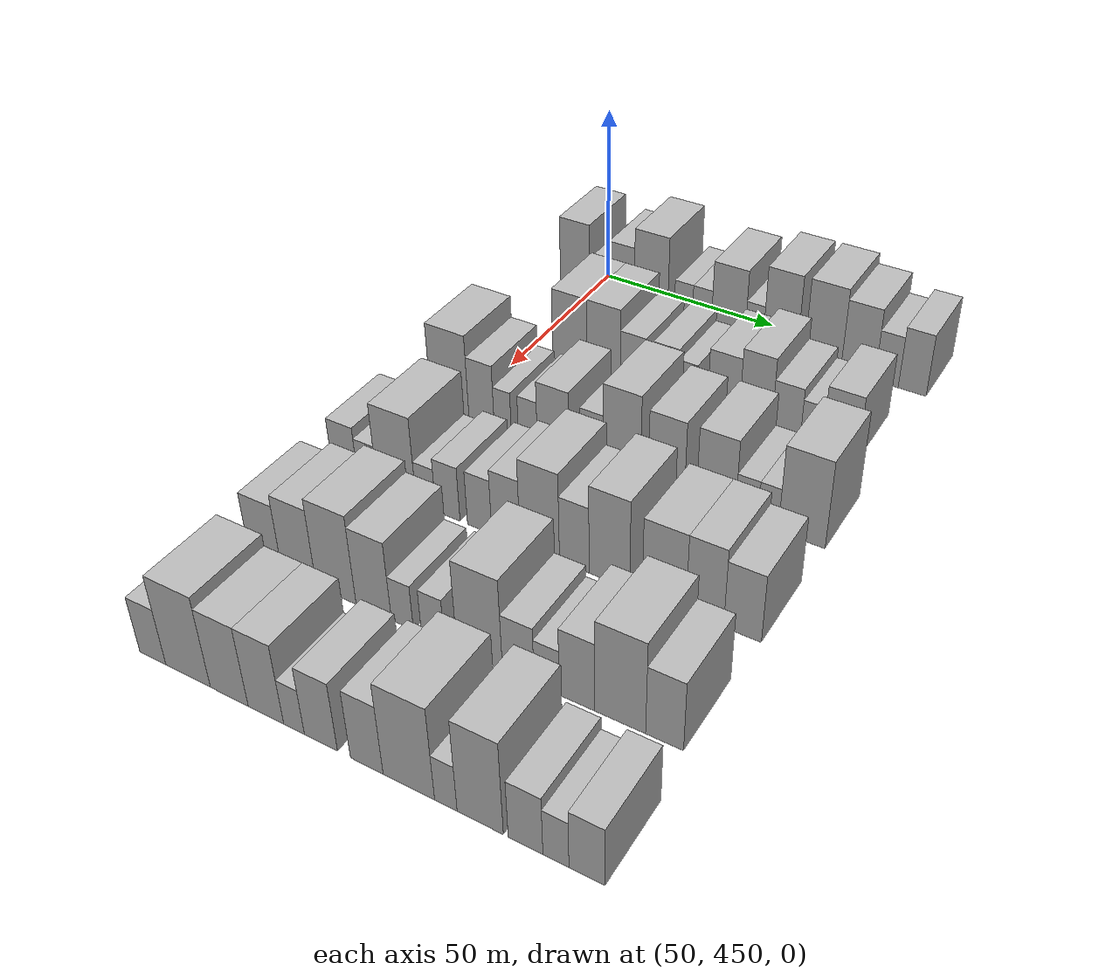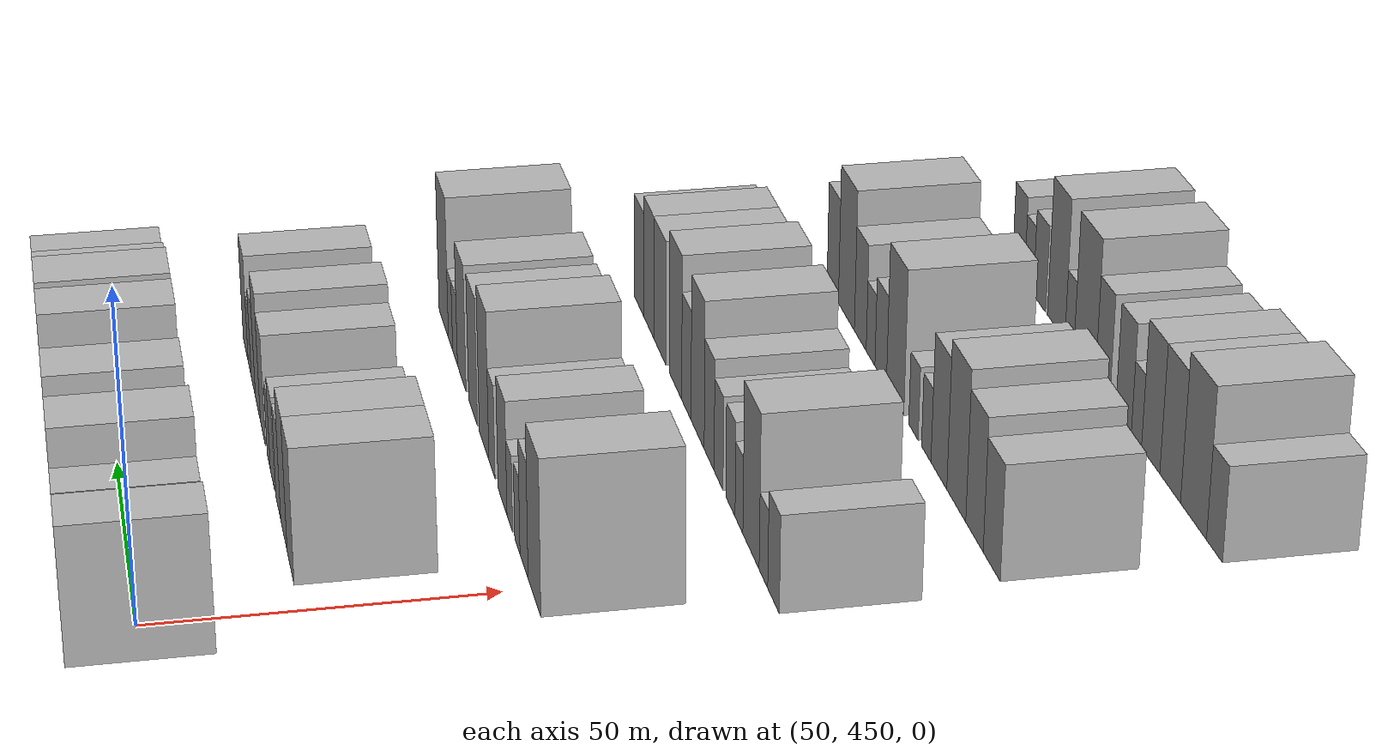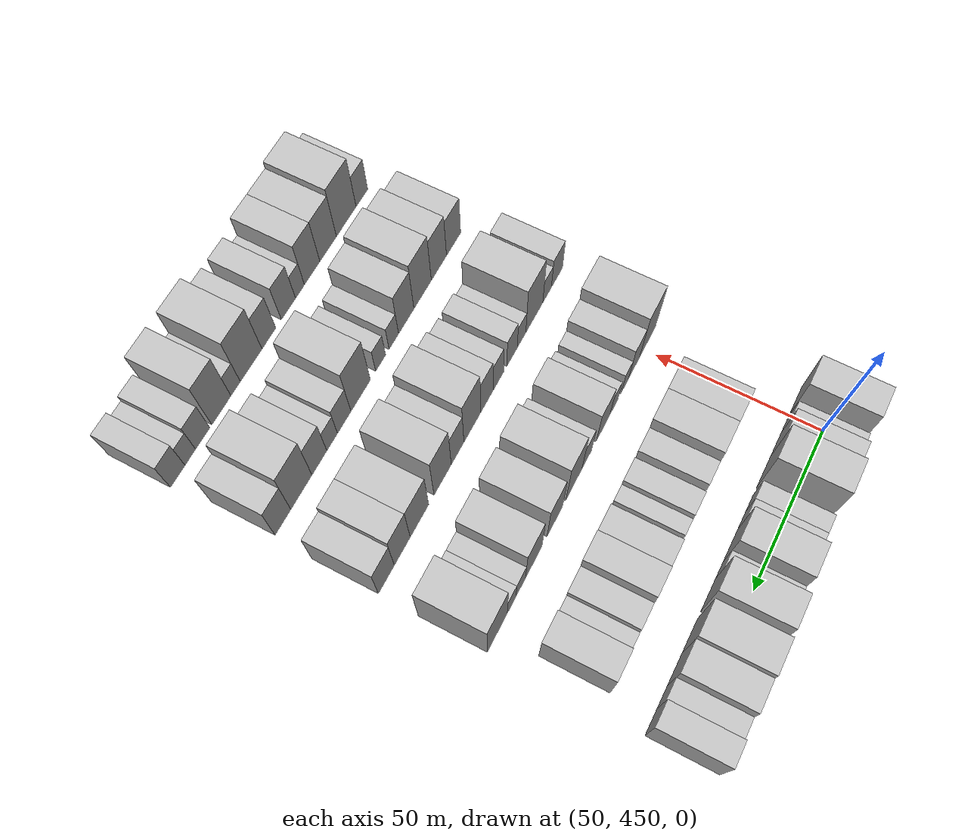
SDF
<sdf version="1.6">
 <world name="default">
  <model name="building_108">
   <static>1</static>
   <pose>50.0000 445.0283 0 0.000000 0.000000 0.000000</pose>
   <link name="link">
    <pose>0 0 10.50 0 0 0</pose>
    <collision name="collision"><geometry><box><size>20.0000 9.3540 21.0000</size></box></geometry></collision>
    <visual name="visual">
     <cast_shadows>0</cast_shadows>
     <geometry><box><size>20.0000 9.3540 21.0000</size></box></geometry>
     <material>
      <script>
       <uri>model://HANNAS_wall/materials/scripts</uri>
       <uri>model://HANNAS_wall/materials/textures</uri>
       <name>vrc/HANNAS_wall</name>
      </script>
     </material>
    </visual>
   </link>
  </model>
  <model name="building_109">
   <static>1</static>
   <pose>50.0000 453.3056 0 0.000000 0.000000 0.000000</pose>
   <link name="link">
    <pose>0 0 6.00 0 0 0</pose>
    <collision name="collision"><geometry><box><size>20.0000 5.2006 12.0000</size></box></geometry></collision>
    <visual name="visual">
     <cast_shadows>0</cast_shadows>
     <geometry><box><size>20.0000 5.2006 12.0000</size></box></geometry>
     <material>
      <script>
       <uri>model://HANNAS_wall/materials/scripts</uri>
       <uri>model://HANNAS_wall/materials/textures</uri>
       <name>vrc/HANNAS_wall</name>
      </script>
     </material>
    </visual>
   </link>
  </model>
  <model name="building_110">
   <static>1</static>
   <pose>50.0000 459.7465 0 0.000000 0.000000 0.000000</pose>
   <link name="link">
    <pose>0 0 9.00 0 0 0</pose>
    <collision name="collision"><geometry><box><size>20.0000 7.6811 18.0000</size></box></geometry></collision>
    <visual name="visual">
     <cast_shadows>0</cast_shadows>
     <geometry><box><size>20.0000 7.6811 18.0000</size></box></geometry>
     <material>
      <script>
       <uri>model://HANNAS_wall/materials/scripts</uri>
       <uri>model://HANNAS_wall/materials/textures</uri>
       <name>vrc/HANNAS_wall</name>
      </script>
     </material>
    </visual>
   </link>
  </model>
  <model name="building_111">
   <static>1</static>
   <pose>50.0000 468.6966 0 0.000000 0.000000 0.000000</pose>
   <link name="link">
    <pose>0 0 12.00 0 0 0</pose>
    <collision name="collision"><geometry><box><size>20.0000 10.2190 24.0000</size></box></geometry></collision>
    <visual name="visual">
     <cast_shadows>0</cast_shadows>
     <geometry><box><size>20.0000 10.2190 24.0000</size></box></geometry>
     <material>
      <script>
       <uri>model://HANNAS_wall/materials/scripts</uri>
       <uri>model://HANNAS_wall/materials/textures</uri>
       <name>vrc/HANNAS_wall</name>
      </script>
     </material>
    </visual>
   </link>
  </model>
  <model name="building_112">
   <static>1</static>
   <pose>50.0000 478.5039 0 0.000000 0.000000 0.000000</pose>
   <link name="link">
    <pose>0 0 6.00 0 0 0</pose>
    <collision name="collision"><geometry><box><size>20.0000 5.3956 12.0000</size></box></geometry></collision>
    <visual name="visual">
     <cast_shadows>0</cast_shadows>
     <geometry><box><size>20.0000 5.3956 12.0000</size></box></geometry>
     <material>
      <script>
       <uri>model://HANNAS_wall/materials/scripts</uri>
       <uri>model://HANNAS_wall/materials/textures</uri>
       <name>vrc/HANNAS_wall</name>
      </script>
     </material>
    </visual>
   </link>
  </model>
  <model name="building_113">
   <static>1</static>
   <pose>50.0000 484.0043 0 0.000000 0.000000 0.000000</pose>
   <link name="link">
    <pose>0 0 6.00 0 0 0</pose>
    <collision name="collision"><geometry><box><size>20.0000 5.6053 12.0000</size></box></geometry></collision>
    <visual name="visual">
     <cast_shadows>0</cast_shadows>
     <geometry><box><size>20.0000 5.6053 12.0000</size></box></geometry>
     <material>
      <script>
       <uri>model://HANNAS_wall/materials/scripts</uri>
       <uri>model://HANNAS_wall/materials/textures</uri>
       <name>vrc/HANNAS_wall</name>
      </script>
     </material>
    </visual>
   </link>
  </model>
  <model name="building_114">
   <static>1</static>
   <pose>50.0000 491.7116 0 0.000000 0.000000 0.000000</pose>
   <link name="link">
    <pose>0 0 10.50 0 0 0</pose>
    <collision name="collision"><geometry><box><size>20.0000 9.8092 21.0000</size></box></geometry></collision>
    <visual name="visual">
     <cast_shadows>0</cast_shadows>
     <geometry><box><size>20.0000 9.8092 21.0000</size></box></geometry>
     <material>
      <script>
       <uri>model://HANNAS_wall/materials/scripts</uri>
       <uri>model://HANNAS_wall/materials/textures</uri>
       <name>vrc/HANNAS_wall</name>
      </script>
     </material>
    </visual>
   </link>
  </model>
  <model name="building_115">
   <static>1</static>
   <pose>50.0000 499.1779 0 0.000000 0.000000 0.000000</pose>
   <link name="link">
    <pose>0 0 6.00 0 0 0</pose>
    <collision name="collision"><geometry><box><size>20.0000 5.1235 12.0000</size></box></geometry></collision>
    <visual name="visual">
     <cast_shadows>0</cast_shadows>
     <geometry><box><size>20.0000 5.1235 12.0000</size></box></geometry>
     <material>
      <script>
       <uri>model://HANNAS_wall/materials/scripts</uri>
       <uri>model://HANNAS_wall/materials/textures</uri>
       <name>vrc/HANNAS_wall</name>
      </script>
     </material>
    </visual>
   </link>
  </model>
  <model name="building_116">
   <static>1</static>
   <pose>50.0000 506.5544 0 0.000000 0.000000 0.000000</pose>
   <link name="link">
    <pose>0 0 12.00 0 0 0</pose>
    <collision name="collision"><geometry><box><size>20.0000 9.6294 24.0000</size></box></geometry></collision>
    <visual name="visual">
     <cast_shadows>0</cast_shadows>
     <geometry><box><size>20.0000 9.6294 24.0000</size></box></geometry>
     <material>
      <script>
       <uri>model://HANNAS_wall/materials/scripts</uri>
       <uri>model://HANNAS_wall/materials/textures</uri>
       <name>vrc/HANNAS_wall</name>
      </script>
     </material>
    </visual>
   </link>
  </model>
  <model name="building_117">
   <static>1</static>
   <pose>50.0000 518.4179 0 0.000000 0.000000 0.000000</pose>
   <link name="link">
    <pose>0 0 12.00 0 0 0</pose>
    <collision name="collision"><geometry><box><size>20.0000 10.0976 24.0000</size></box></geometry></collision>
    <visual name="visual">
     <cast_shadows>0</cast_shadows>
     <geometry><box><size>20.0000 10.0976 24.0000</size></box></geometry>
     <material>
      <script>
       <uri>model://HANNAS_wall/materials/scripts</uri>
       <uri>model://HANNAS_wall/materials/textures</uri>
       <name>vrc/HANNAS_wall</name>
      </script>
     </material>
    </visual>
   </link>
  </model>
  <model name="building_118">
   <static>1</static>
   <pose>50.0000 528.0215 0 0.000000 0.000000 0.000000</pose>
   <link name="link">
    <pose>0 0 10.50 0 0 0</pose>
    <collision name="collision"><geometry><box><size>20.0000 9.1098 21.0000</size></box></geometry></collision>
    <visual name="visual">
     <cast_shadows>0</cast_shadows>
     <geometry><box><size>20.0000 9.1098 21.0000</size></box></geometry>
     <material>
      <script>
       <uri>model://HANNAS_wall/materials/scripts</uri>
       <uri>model://HANNAS_wall/materials/textures</uri>
       <name>vrc/HANNAS_wall</name>
      </script>
     </material>
    </visual>
   </link>
  </model>
  <model name="building_119">
   <static>1</static>
   <pose>50.0000 535.6797 0 0.000000 0.000000 0.000000</pose>
   <link name="link">
    <pose>0 0 7.50 0 0 0</pose>
    <collision name="collision"><geometry><box><size>20.0000 6.2066 15.0000</size></box></geometry></collision>
    <visual name="visual">
     <cast_shadows>0</cast_shadows>
     <geometry><box><size>20.0000 6.2066 15.0000</size></box></geometry>
     <material>
      <script>
       <uri>model://HANNAS_wall/materials/scripts</uri>
       <uri>model://HANNAS_wall/materials/textures</uri>
       <name>vrc/HANNAS_wall</name>
      </script>
     </material>
    </visual>
   </link>
  </model>
  <model name="building_120">
   <static>1</static>
   <pose>50.0000 542.4233 0 0.000000 0.000000 0.000000</pose>
   <link name="link">
    <pose>0 0 9.00 0 0 0</pose>
    <collision name="collision"><geometry><box><size>20.0000 7.2804 18.0000</size></box></geometry></collision>
    <visual name="visual">
     <cast_shadows>0</cast_shadows>
     <geometry><box><size>20.0000 7.2804 18.0000</size></box></geometry>
     <material>
      <script>
       <uri>model://HANNAS_wall/materials/scripts</uri>
       <uri>model://HANNAS_wall/materials/textures</uri>
       <name>vrc/HANNAS_wall</name>
      </script>
     </material>
    </visual>
   </link>
  </model>
  <model name="building_235">
   <static>1</static>
   <pose>82.0000 462.4996 0 0.000000 0.000000 0.000000</pose>
   <link name="link">
    <pose>0 0 10.50 0 0 0</pose>
    <collision name="collision"><geometry><box><size>20.0000 10.1060 21.0000</size></box></geometry></collision>
    <visual name="visual">
     <cast_shadows>0</cast_shadows>
     <geometry><box><size>20.0000 10.1060 21.0000</size></box></geometry>
     <material>
      <script>
       <uri>model://HANNAS_wall/materials/scripts</uri>
       <uri>model://HANNAS_wall/materials/textures</uri>
       <name>vrc/HANNAS_wall</name>
      </script>
     </material>
    </visual>
   </link>
  </model>
  <model name="building_236">
   <static>1</static>
   <pose>82.0000 472.3910 0 0.000000 0.000000 0.000000</pose>
   <link name="link">
    <pose>0 0 10.50 0 0 0</pose>
    <collision name="collision"><geometry><box><size>20.0000 9.6768 21.0000</size></box></geometry></collision>
    <visual name="visual">
     <cast_shadows>0</cast_shadows>
     <geometry><box><size>20.0000 9.6768 21.0000</size></box></geometry>
     <material>
      <script>
       <uri>model://HANNAS_wall/materials/scripts</uri>
       <uri>model://HANNAS_wall/materials/textures</uri>
       <name>vrc/HANNAS_wall</name>
      </script>
     </material>
    </visual>
   </link>
  </model>
  <model name="building_237">
   <static>1</static>
   <pose>82.0000 480.8398 0 0.000000 0.000000 0.000000</pose>
   <link name="link">
    <pose>0 0 7.50 0 0 0</pose>
    <collision name="collision"><geometry><box><size>20.0000 7.2209 15.0000</size></box></geometry></collision>
    <visual name="visual">
     <cast_shadows>0</cast_shadows>
     <geometry><box><size>20.0000 7.2209 15.0000</size></box></geometry>
     <material>
      <script>
       <uri>model://HANNAS_wall/materials/scripts</uri>
       <uri>model://HANNAS_wall/materials/textures</uri>
       <name>vrc/HANNAS_wall</name>
      </script>
     </material>
    </visual>
   </link>
  </model>
  <model name="building_238">
   <static>1</static>
   <pose>82.0000 490.0213 0 0.000000 0.000000 0.000000</pose>
   <link name="link">
    <pose>0 0 7.50 0 0 0</pose>
    <collision name="collision"><geometry><box><size>20.0000 7.1421 15.0000</size></box></geometry></collision>
    <visual name="visual">
     <cast_shadows>0</cast_shadows>
     <geometry><box><size>20.0000 7.1421 15.0000</size></box></geometry>
     <material>
      <script>
       <uri>model://HANNAS_wall/materials/scripts</uri>
       <uri>model://HANNAS_wall/materials/textures</uri>
       <name>vrc/HANNAS_wall</name>
      </script>
     </material>
    </visual>
   </link>
  </model>
  <model name="building_239">
   <static>1</static>
   <pose>82.0000 496.0827 0 0.000000 0.000000 0.000000</pose>
   <link name="link">
    <pose>0 0 6.00 0 0 0</pose>
    <collision name="collision"><geometry><box><size>20.0000 4.9807 12.0000</size></box></geometry></collision>
    <visual name="visual">
     <cast_shadows>0</cast_shadows>
     <geometry><box><size>20.0000 4.9807 12.0000</size></box></geometry>
     <material>
      <script>
       <uri>model://HANNAS_wall/materials/scripts</uri>
       <uri>model://HANNAS_wall/materials/textures</uri>
       <name>vrc/HANNAS_wall</name>
      </script>
     </material>
    </visual>
   </link>
  </model>
  <model name="building_240">
   <static>1</static>
   <pose>82.0000 505.8542 0 0.000000 0.000000 0.000000</pose>
   <link name="link">
    <pose>0 0 9.00 0 0 0</pose>
    <collision name="collision"><geometry><box><size>20.0000 8.5623 18.0000</size></box></geometry></collision>
    <visual name="visual">
     <cast_shadows>0</cast_shadows>
     <geometry><box><size>20.0000 8.5623 18.0000</size></box></geometry>
     <material>
      <script>
       <uri>model://HANNAS_wall/materials/scripts</uri>
       <uri>model://HANNAS_wall/materials/textures</uri>
       <name>vrc/HANNAS_wall</name>
      </script>
     </material>
    </visual>
   </link>
  </model>
  <model name="building_241">
   <static>1</static>
   <pose>82.0000 514.4048 0 0.000000 0.000000 0.000000</pose>
   <link name="link">
    <pose>0 0 10.50 0 0 0</pose>
    <collision name="collision"><geometry><box><size>20.0000 8.5391 21.0000</size></box></geometry></collision>
    <visual name="visual">
     <cast_shadows>0</cast_shadows>
     <geometry><box><size>20.0000 8.5391 21.0000</size></box></geometry>
     <material>
      <script>
       <uri>model://HANNAS_wall/materials/scripts</uri>
       <uri>model://HANNAS_wall/materials/textures</uri>
       <name>vrc/HANNAS_wall</name>
      </script>
     </material>
    </visual>
   </link>
  </model>
  <model name="building_242">
   <static>1</static>
   <pose>82.0000 522.4053 0 0.000000 0.000000 0.000000</pose>
   <link name="link">
    <pose>0 0 7.50 0 0 0</pose>
    <collision name="collision"><geometry><box><size>20.0000 7.4619 15.0000</size></box></geometry></collision>
    <visual name="visual">
     <cast_shadows>0</cast_shadows>
     <geometry><box><size>20.0000 7.4619 15.0000</size></box></geometry>
     <material>
      <script>
       <uri>model://HANNAS_wall/materials/scripts</uri>
       <uri>model://HANNAS_wall/materials/textures</uri>
       <name>vrc/HANNAS_wall</name>
      </script>
     </material>
    </visual>
   </link>
  </model>
  <model name="building_243">
   <static>1</static>
   <pose>82.0000 528.9283 0 0.000000 0.000000 0.000000</pose>
   <link name="link">
    <pose>0 0 6.00 0 0 0</pose>
    <collision name="collision"><geometry><box><size>20.0000 5.5841 12.0000</size></box></geometry></collision>
    <visual name="visual">
     <cast_shadows>0</cast_shadows>
     <geometry><box><size>20.0000 5.5841 12.0000</size></box></geometry>
     <material>
      <script>
       <uri>model://HANNAS_wall/materials/scripts</uri>
       <uri>model://HANNAS_wall/materials/textures</uri>
       <name>vrc/HANNAS_wall</name>
      </script>
     </material>
    </visual>
   </link>
  </model>
  <model name="building_244">
   <static>1</static>
   <pose>82.0000 536.2103 0 0.000000 0.000000 0.000000</pose>
   <link name="link">
    <pose>0 0 9.00 0 0 0</pose>
    <collision name="collision"><geometry><box><size>20.0000 8.9800 18.0000</size></box></geometry></collision>
    <visual name="visual">
     <cast_shadows>0</cast_shadows>
     <geometry><box><size>20.0000 8.9800 18.0000</size></box></geometry>
     <material>
      <script>
       <uri>model://HANNAS_wall/materials/scripts</uri>
       <uri>model://HANNAS_wall/materials/textures</uri>
       <name>vrc/HANNAS_wall</name>
      </script>
     </material>
    </visual>
   </link>
  </model>
  <model name="building_358">
   <static>1</static>
   <pose>114.0000 447.6583 0 0.000000 0.000000 0.000000</pose>
   <link name="link">
    <pose>0 0 12.00 0 0 0</pose>
    <collision name="collision"><geometry><box><size>20.0000 11.1463 24.0000</size></box></geometry></collision>
    <visual name="visual">
     <cast_shadows>0</cast_shadows>
     <geometry><box><size>20.0000 11.1463 24.0000</size></box></geometry>
     <material>
      <script>
       <uri>model://HANNAS_wall/materials/scripts</uri>
       <uri>model://HANNAS_wall/materials/textures</uri>
       <name>vrc/HANNAS_wall</name>
      </script>
     </material>
    </visual>
   </link>
  </model>
  <model name="building_359">
   <static>1</static>
   <pose>114.0000 456.8945 0 0.000000 0.000000 0.000000</pose>
   <link name="link">
    <pose>0 0 9.00 0 0 0</pose>
    <collision name="collision"><geometry><box><size>20.0000 7.3260 18.0000</size></box></geometry></collision>
    <visual name="visual">
     <cast_shadows>0</cast_shadows>
     <geometry><box><size>20.0000 7.3260 18.0000</size></box></geometry>
     <material>
      <script>
       <uri>model://HANNAS_wall/materials/scripts</uri>
       <uri>model://HANNAS_wall/materials/textures</uri>
       <name>vrc/HANNAS_wall</name>
      </script>
     </material>
    </visual>
   </link>
  </model>
  <model name="building_360">
   <static>1</static>
   <pose>114.0000 462.9871 0 0.000000 0.000000 0.000000</pose>
   <link name="link">
    <pose>0 0 6.00 0 0 0</pose>
    <collision name="collision"><geometry><box><size>20.0000 4.8592 12.0000</size></box></geometry></collision>
    <visual name="visual">
     <cast_shadows>0</cast_shadows>
     <geometry><box><size>20.0000 4.8592 12.0000</size></box></geometry>
     <material>
      <script>
       <uri>model://HANNAS_wall/materials/scripts</uri>
       <uri>model://HANNAS_wall/materials/textures</uri>
       <name>vrc/HANNAS_wall</name>
      </script>
     </material>
    </visual>
   </link>
  </model>
  <model name="building_361">
   <static>1</static>
   <pose>114.0000 470.0687 0 0.000000 0.000000 0.000000</pose>
   <link name="link">
    <pose>0 0 6.00 0 0 0</pose>
    <collision name="collision"><geometry><box><size>20.0000 5.3041 12.0000</size></box></geometry></collision>
    <visual name="visual">
     <cast_shadows>0</cast_shadows>
     <geometry><box><size>20.0000 5.3041 12.0000</size></box></geometry>
     <material>
      <script>
       <uri>model://HANNAS_wall/materials/scripts</uri>
       <uri>model://HANNAS_wall/materials/textures</uri>
       <name>vrc/HANNAS_wall</name>
      </script>
     </material>
    </visual>
   </link>
  </model>
  <model name="building_362">
   <static>1</static>
   <pose>114.0000 477.0723 0 0.000000 0.000000 0.000000</pose>
   <link name="link">
    <pose>0 0 9.00 0 0 0</pose>
    <collision name="collision"><geometry><box><size>20.0000 8.7031 18.0000</size></box></geometry></collision>
    <visual name="visual">
     <cast_shadows>0</cast_shadows>
     <geometry><box><size>20.0000 8.7031 18.0000</size></box></geometry>
     <material>
      <script>
       <uri>model://HANNAS_wall/materials/scripts</uri>
       <uri>model://HANNAS_wall/materials/textures</uri>
       <name>vrc/HANNAS_wall</name>
      </script>
     </material>
    </visual>
   </link>
  </model>
  <model name="building_363">
   <static>1</static>
   <pose>114.0000 487.4982 0 0.000000 0.000000 0.000000</pose>
   <link name="link">
    <pose>0 0 7.50 0 0 0</pose>
    <collision name="collision"><geometry><box><size>20.0000 6.1487 15.0000</size></box></geometry></collision>
    <visual name="visual">
     <cast_shadows>0</cast_shadows>
     <geometry><box><size>20.0000 6.1487 15.0000</size></box></geometry>
     <material>
      <script>
       <uri>model://HANNAS_wall/materials/scripts</uri>
       <uri>model://HANNAS_wall/materials/textures</uri>
       <name>vrc/HANNAS_wall</name>
      </script>
     </material>
    </visual>
   </link>
  </model>
  <model name="building_364">
   <static>1</static>
   <pose>114.0000 495.5265 0 0.000000 0.000000 0.000000</pose>
   <link name="link">
    <pose>0 0 12.00 0 0 0</pose>
    <collision name="collision"><geometry><box><size>20.0000 9.9079 24.0000</size></box></geometry></collision>
    <visual name="visual">
     <cast_shadows>0</cast_shadows>
     <geometry><box><size>20.0000 9.9079 24.0000</size></box></geometry>
     <material>
      <script>
       <uri>model://HANNAS_wall/materials/scripts</uri>
       <uri>model://HANNAS_wall/materials/textures</uri>
       <name>vrc/HANNAS_wall</name>
      </script>
     </material>
    </visual>
   </link>
  </model>
  <model name="building_365">
   <static>1</static>
   <pose>114.0000 507.1232 0 0.000000 0.000000 0.000000</pose>
   <link name="link">
    <pose>0 0 10.50 0 0 0</pose>
    <collision name="collision"><geometry><box><size>20.0000 9.2853 21.0000</size></box></geometry></collision>
    <visual name="visual">
     <cast_shadows>0</cast_shadows>
     <geometry><box><size>20.0000 9.2853 21.0000</size></box></geometry>
     <material>
      <script>
       <uri>model://HANNAS_wall/materials/scripts</uri>
       <uri>model://HANNAS_wall/materials/textures</uri>
       <name>vrc/HANNAS_wall</name>
      </script>
     </material>
    </visual>
   </link>
  </model>
  <model name="building_366">
   <static>1</static>
   <pose>114.0000 519.5775 0 0.000000 0.000000 0.000000</pose>
   <link name="link">
    <pose>0 0 10.50 0 0 0</pose>
    <collision name="collision"><geometry><box><size>20.0000 9.6234 21.0000</size></box></geometry></collision>
    <visual name="visual">
     <cast_shadows>0</cast_shadows>
     <geometry><box><size>20.0000 9.6234 21.0000</size></box></geometry>
     <material>
      <script>
       <uri>model://HANNAS_wall/materials/scripts</uri>
       <uri>model://HANNAS_wall/materials/textures</uri>
       <name>vrc/HANNAS_wall</name>
      </script>
     </material>
    </visual>
   </link>
  </model>
  <model name="building_367">
   <static>1</static>
   <pose>114.0000 527.1208 0 0.000000 0.000000 0.000000</pose>
   <link name="link">
    <pose>0 0 6.00 0 0 0</pose>
    <collision name="collision"><geometry><box><size>20.0000 5.4630 12.0000</size></box></geometry></collision>
    <visual name="visual">
     <cast_shadows>0</cast_shadows>
     <geometry><box><size>20.0000 5.4630 12.0000</size></box></geometry>
     <material>
      <script>
       <uri>model://HANNAS_wall/materials/scripts</uri>
       <uri>model://HANNAS_wall/materials/textures</uri>
       <name>vrc/HANNAS_wall</name>
      </script>
     </material>
    </visual>
   </link>
  </model>
  <model name="building_368">
   <static>1</static>
   <pose>114.0000 532.3269 0 0.000000 0.000000 0.000000</pose>
   <link name="link">
    <pose>0 0 6.00 0 0 0</pose>
    <collision name="collision"><geometry><box><size>20.0000 4.9493 12.0000</size></box></geometry></collision>
    <visual name="visual">
     <cast_shadows>0</cast_shadows>
     <geometry><box><size>20.0000 4.9493 12.0000</size></box></geometry>
     <material>
      <script>
       <uri>model://HANNAS_wall/materials/scripts</uri>
       <uri>model://HANNAS_wall/materials/textures</uri>
       <name>vrc/HANNAS_wall</name>
      </script>
     </material>
    </visual>
   </link>
  </model>
  <model name="building_369">
   <static>1</static>
   <pose>114.0000 540.3286 0 0.000000 0.000000 0.000000</pose>
   <link name="link">
    <pose>0 0 12.00 0 0 0</pose>
    <collision name="collision"><geometry><box><size>20.0000 11.0540 24.0000</size></box></geometry></collision>
    <visual name="visual">
     <cast_shadows>0</cast_shadows>
     <geometry><box><size>20.0000 11.0540 24.0000</size></box></geometry>
     <material>
      <script>
       <uri>model://HANNAS_wall/materials/scripts</uri>
       <uri>model://HANNAS_wall/materials/textures</uri>
       <name>vrc/HANNAS_wall</name>
      </script>
     </material>
    </visual>
   </link>
  </model>
  <model name="building_473">
   <static>1</static>
   <pose>146.0000 440.6736 0 0.000000 0.000000 0.000000</pose>
   <link name="link">
    <pose>0 0 7.50 0 0 0</pose>
    <collision name="collision"><geometry><box><size>20.0000 7.3198 15.0000</size></box></geometry></collision>
    <visual name="visual">
     <cast_shadows>0</cast_shadows>
     <geometry><box><size>20.0000 7.3198 15.0000</size></box></geometry>
     <material>
      <script>
       <uri>model://HANNAS_wall/materials/scripts</uri>
       <uri>model://HANNAS_wall/materials/textures</uri>
       <name>vrc/HANNAS_wall</name>
      </script>
     </material>
    </visual>
   </link>
  </model>
  <model name="building_474">
   <static>1</static>
   <pose>146.0000 447.1225 0 0.000000 0.000000 0.000000</pose>
   <link name="link">
    <pose>0 0 6.00 0 0 0</pose>
    <collision name="collision"><geometry><box><size>20.0000 5.5780 12.0000</size></box></geometry></collision>
    <visual name="visual">
     <cast_shadows>0</cast_shadows>
     <geometry><box><size>20.0000 5.5780 12.0000</size></box></geometry>
     <material>
      <script>
       <uri>model://HANNAS_wall/materials/scripts</uri>
       <uri>model://HANNAS_wall/materials/textures</uri>
       <name>vrc/HANNAS_wall</name>
      </script>
     </material>
    </visual>
   </link>
  </model>
  <model name="building_475">
   <static>1</static>
   <pose>146.0000 455.3314 0 0.000000 0.000000 0.000000</pose>
   <link name="link">
    <pose>0 0 12.00 0 0 0</pose>
    <collision name="collision"><geometry><box><size>20.0000 10.8398 24.0000</size></box></geometry></collision>
    <visual name="visual">
     <cast_shadows>0</cast_shadows>
     <geometry><box><size>20.0000 10.8398 24.0000</size></box></geometry>
     <material>
      <script>
       <uri>model://HANNAS_wall/materials/scripts</uri>
       <uri>model://HANNAS_wall/materials/textures</uri>
       <name>vrc/HANNAS_wall</name>
      </script>
     </material>
    </visual>
   </link>
  </model>
  <model name="building_476">
   <static>1</static>
   <pose>146.0000 463.4312 0 0.000000 0.000000 0.000000</pose>
   <link name="link">
    <pose>0 0 6.00 0 0 0</pose>
    <collision name="collision"><geometry><box><size>20.0000 5.3597 12.0000</size></box></geometry></collision>
    <visual name="visual">
     <cast_shadows>0</cast_shadows>
     <geometry><box><size>20.0000 5.3597 12.0000</size></box></geometry>
     <material>
      <script>
       <uri>model://HANNAS_wall/materials/scripts</uri>
       <uri>model://HANNAS_wall/materials/textures</uri>
       <name>vrc/HANNAS_wall</name>
      </script>
     </material>
    </visual>
   </link>
  </model>
  <model name="building_477">
   <static>1</static>
   <pose>146.0000 469.3541 0 0.000000 0.000000 0.000000</pose>
   <link name="link">
    <pose>0 0 7.50 0 0 0</pose>
    <collision name="collision"><geometry><box><size>20.0000 6.4862 15.0000</size></box></geometry></collision>
    <visual name="visual">
     <cast_shadows>0</cast_shadows>
     <geometry><box><size>20.0000 6.4862 15.0000</size></box></geometry>
     <material>
      <script>
       <uri>model://HANNAS_wall/materials/scripts</uri>
       <uri>model://HANNAS_wall/materials/textures</uri>
       <name>vrc/HANNAS_wall</name>
      </script>
     </material>
    </visual>
   </link>
  </model>
  <model name="building_478">
   <static>1</static>
   <pose>146.0000 477.7986 0 0.000000 0.000000 0.000000</pose>
   <link name="link">
    <pose>0 0 7.50 0 0 0</pose>
    <collision name="collision"><geometry><box><size>20.0000 6.4028 15.0000</size></box></geometry></collision>
    <visual name="visual">
     <cast_shadows>0</cast_shadows>
     <geometry><box><size>20.0000 6.4028 15.0000</size></box></geometry>
     <material>
      <script>
       <uri>model://HANNAS_wall/materials/scripts</uri>
       <uri>model://HANNAS_wall/materials/textures</uri>
       <name>vrc/HANNAS_wall</name>
      </script>
     </material>
    </visual>
   </link>
  </model>
  <model name="building_479">
   <static>1</static>
   <pose>146.0000 484.6641 0 0.000000 0.000000 0.000000</pose>
   <link name="link">
    <pose>0 0 9.00 0 0 0</pose>
    <collision name="collision"><geometry><box><size>20.0000 7.3284 18.0000</size></box></geometry></collision>
    <visual name="visual">
     <cast_shadows>0</cast_shadows>
     <geometry><box><size>20.0000 7.3284 18.0000</size></box></geometry>
     <material>
      <script>
       <uri>model://HANNAS_wall/materials/scripts</uri>
       <uri>model://HANNAS_wall/materials/textures</uri>
       <name>vrc/HANNAS_wall</name>
      </script>
     </material>
    </visual>
   </link>
  </model>
  <model name="building_480">
   <static>1</static>
   <pose>146.0000 493.3076 0 0.000000 0.000000 0.000000</pose>
   <link name="link">
    <pose>0 0 12.00 0 0 0</pose>
    <collision name="collision"><geometry><box><size>20.0000 9.9585 24.0000</size></box></geometry></collision>
    <visual name="visual">
     <cast_shadows>0</cast_shadows>
     <geometry><box><size>20.0000 9.9585 24.0000</size></box></geometry>
     <material>
      <script>
       <uri>model://HANNAS_wall/materials/scripts</uri>
       <uri>model://HANNAS_wall/materials/textures</uri>
       <name>vrc/HANNAS_wall</name>
      </script>
     </material>
    </visual>
   </link>
  </model>
  <model name="building_481">
   <static>1</static>
   <pose>146.0000 501.9368 0 0.000000 0.000000 0.000000</pose>
   <link name="link">
    <pose>0 0 9.00 0 0 0</pose>
    <collision name="collision"><geometry><box><size>20.0000 7.2999 18.0000</size></box></geometry></collision>
    <visual name="visual">
     <cast_shadows>0</cast_shadows>
     <geometry><box><size>20.0000 7.2999 18.0000</size></box></geometry>
     <material>
      <script>
       <uri>model://HANNAS_wall/materials/scripts</uri>
       <uri>model://HANNAS_wall/materials/textures</uri>
       <name>vrc/HANNAS_wall</name>
      </script>
     </material>
    </visual>
   </link>
  </model>
  <model name="building_482">
   <static>1</static>
   <pose>146.0000 510.4770 0 0.000000 0.000000 0.000000</pose>
   <link name="link">
    <pose>0 0 12.00 0 0 0</pose>
    <collision name="collision"><geometry><box><size>20.0000 9.7805 24.0000</size></box></geometry></collision>
    <visual name="visual">
     <cast_shadows>0</cast_shadows>
     <geometry><box><size>20.0000 9.7805 24.0000</size></box></geometry>
     <material>
      <script>
       <uri>model://HANNAS_wall/materials/scripts</uri>
       <uri>model://HANNAS_wall/materials/textures</uri>
       <name>vrc/HANNAS_wall</name>
      </script>
     </material>
    </visual>
   </link>
  </model>
  <model name="building_483">
   <static>1</static>
   <pose>146.0000 523.4531 0 0.000000 0.000000 0.000000</pose>
   <link name="link">
    <pose>0 0 10.50 0 0 0</pose>
    <collision name="collision"><geometry><box><size>20.0000 10.1718 21.0000</size></box></geometry></collision>
    <visual name="visual">
     <cast_shadows>0</cast_shadows>
     <geometry><box><size>20.0000 10.1718 21.0000</size></box></geometry>
     <material>
      <script>
       <uri>model://HANNAS_wall/materials/scripts</uri>
       <uri>model://HANNAS_wall/materials/textures</uri>
       <name>vrc/HANNAS_wall</name>
      </script>
     </material>
    </visual>
   </link>
  </model>
  <model name="building_484">
   <static>1</static>
   <pose>146.0000 532.8271 0 0.000000 0.000000 0.000000</pose>
   <link name="link">
    <pose>0 0 10.50 0 0 0</pose>
    <collision name="collision"><geometry><box><size>20.0000 8.5763 21.0000</size></box></geometry></collision>
    <visual name="visual">
     <cast_shadows>0</cast_shadows>
     <geometry><box><size>20.0000 8.5763 21.0000</size></box></geometry>
     <material>
      <script>
       <uri>model://HANNAS_wall/materials/scripts</uri>
       <uri>model://HANNAS_wall/materials/textures</uri>
       <name>vrc/HANNAS_wall</name>
      </script>
     </material>
    </visual>
   </link>
  </model>
  <model name="building_485">
   <static>1</static>
   <pose>146.0000 541.3108 0 0.000000 0.000000 0.000000</pose>
   <link name="link">
    <pose>0 0 9.00 0 0 0</pose>
    <collision name="collision"><geometry><box><size>20.0000 8.3909 18.0000</size></box></geometry></collision>
    <visual name="visual">
     <cast_shadows>0</cast_shadows>
     <geometry><box><size>20.0000 8.3909 18.0000</size></box></geometry>
     <material>
      <script>
       <uri>model://HANNAS_wall/materials/scripts</uri>
       <uri>model://HANNAS_wall/materials/textures</uri>
       <name>vrc/HANNAS_wall</name>
      </script>
     </material>
    </visual>
   </link>
  </model>
  <model name="building_597">
   <static>1</static>
   <pose>178.0000 444.5749 0 0.000000 0.000000 0.000000</pose>
   <link name="link">
    <pose>0 0 9.00 0 0 0</pose>
    <collision name="collision"><geometry><box><size>20.0000 8.7968 18.0000</size></box></geometry></collision>
    <visual name="visual">
     <cast_shadows>0</cast_shadows>
     <geometry><box><size>20.0000 8.7968 18.0000</size></box></geometry>
     <material>
      <script>
       <uri>model://HANNAS_wall/materials/scripts</uri>
       <uri>model://HANNAS_wall/materials/textures</uri>
       <name>vrc/HANNAS_wall</name>
      </script>
     </material>
    </visual>
   </link>
  </model>
  <model name="building_598">
   <static>1</static>
   <pose>178.0000 453.6176 0 0.000000 0.000000 0.000000</pose>
   <link name="link">
    <pose>0 0 10.50 0 0 0</pose>
    <collision name="collision"><geometry><box><size>20.0000 9.2886 21.0000</size></box></geometry></collision>
    <visual name="visual">
     <cast_shadows>0</cast_shadows>
     <geometry><box><size>20.0000 9.2886 21.0000</size></box></geometry>
     <material>
      <script>
       <uri>model://HANNAS_wall/materials/scripts</uri>
       <uri>model://HANNAS_wall/materials/textures</uri>
       <name>vrc/HANNAS_wall</name>
      </script>
     </material>
    </visual>
   </link>
  </model>
  <model name="building_599">
   <static>1</static>
   <pose>178.0000 463.4793 0 0.000000 0.000000 0.000000</pose>
   <link name="link">
    <pose>0 0 12.00 0 0 0</pose>
    <collision name="collision"><geometry><box><size>20.0000 10.4347 24.0000</size></box></geometry></collision>
    <visual name="visual">
     <cast_shadows>0</cast_shadows>
     <geometry><box><size>20.0000 10.4347 24.0000</size></box></geometry>
     <material>
      <script>
       <uri>model://HANNAS_wall/materials/scripts</uri>
       <uri>model://HANNAS_wall/materials/textures</uri>
       <name>vrc/HANNAS_wall</name>
      </script>
     </material>
    </visual>
   </link>
  </model>
  <model name="building_600">
   <static>1</static>
   <pose>178.0000 473.2058 0 0.000000 0.000000 0.000000</pose>
   <link name="link">
    <pose>0 0 10.50 0 0 0</pose>
    <collision name="collision"><geometry><box><size>20.0000 9.0182 21.0000</size></box></geometry></collision>
    <visual name="visual">
     <cast_shadows>0</cast_shadows>
     <geometry><box><size>20.0000 9.0182 21.0000</size></box></geometry>
     <material>
      <script>
       <uri>model://HANNAS_wall/materials/scripts</uri>
       <uri>model://HANNAS_wall/materials/textures</uri>
       <name>vrc/HANNAS_wall</name>
      </script>
     </material>
    </visual>
   </link>
  </model>
  <model name="building_601">
   <static>1</static>
   <pose>178.0000 480.4621 0 0.000000 0.000000 0.000000</pose>
   <link name="link">
    <pose>0 0 6.00 0 0 0</pose>
    <collision name="collision"><geometry><box><size>20.0000 5.4945 12.0000</size></box></geometry></collision>
    <visual name="visual">
     <cast_shadows>0</cast_shadows>
     <geometry><box><size>20.0000 5.4945 12.0000</size></box></geometry>
     <material>
      <script>
       <uri>model://HANNAS_wall/materials/scripts</uri>
       <uri>model://HANNAS_wall/materials/textures</uri>
       <name>vrc/HANNAS_wall</name>
      </script>
     </material>
    </visual>
   </link>
  </model>
  <model name="building_602">
   <static>1</static>
   <pose>178.0000 488.0314 0 0.000000 0.000000 0.000000</pose>
   <link name="link">
    <pose>0 0 6.00 0 0 0</pose>
    <collision name="collision"><geometry><box><size>20.0000 5.6440 12.0000</size></box></geometry></collision>
    <visual name="visual">
     <cast_shadows>0</cast_shadows>
     <geometry><box><size>20.0000 5.6440 12.0000</size></box></geometry>
     <material>
      <script>
       <uri>model://HANNAS_wall/materials/scripts</uri>
       <uri>model://HANNAS_wall/materials/textures</uri>
       <name>vrc/HANNAS_wall</name>
      </script>
     </material>
    </visual>
   </link>
  </model>
  <model name="building_603">
   <static>1</static>
   <pose>178.0000 499.2494 0 0.000000 0.000000 0.000000</pose>
   <link name="link">
    <pose>0 0 12.00 0 0 0</pose>
    <collision name="collision"><geometry><box><size>20.0000 10.7921 24.0000</size></box></geometry></collision>
    <visual name="visual">
     <cast_shadows>0</cast_shadows>
     <geometry><box><size>20.0000 10.7921 24.0000</size></box></geometry>
     <material>
      <script>
       <uri>model://HANNAS_wall/materials/scripts</uri>
       <uri>model://HANNAS_wall/materials/textures</uri>
       <name>vrc/HANNAS_wall</name>
      </script>
     </material>
    </visual>
   </link>
  </model>
  <model name="building_604">
   <static>1</static>
   <pose>178.0000 508.3119 0 0.000000 0.000000 0.000000</pose>
   <link name="link">
    <pose>0 0 7.50 0 0 0</pose>
    <collision name="collision"><geometry><box><size>20.0000 7.3327 15.0000</size></box></geometry></collision>
    <visual name="visual">
     <cast_shadows>0</cast_shadows>
     <geometry><box><size>20.0000 7.3327 15.0000</size></box></geometry>
     <material>
      <script>
       <uri>model://HANNAS_wall/materials/scripts</uri>
       <uri>model://HANNAS_wall/materials/textures</uri>
       <name>vrc/HANNAS_wall</name>
      </script>
     </material>
    </visual>
   </link>
  </model>
  <model name="building_605">
   <static>1</static>
   <pose>178.0000 514.8352 0 0.000000 0.000000 0.000000</pose>
   <link name="link">
    <pose>0 0 6.00 0 0 0</pose>
    <collision name="collision"><geometry><box><size>20.0000 5.7140 12.0000</size></box></geometry></collision>
    <visual name="visual">
     <cast_shadows>0</cast_shadows>
     <geometry><box><size>20.0000 5.7140 12.0000</size></box></geometry>
     <material>
      <script>
       <uri>model://HANNAS_wall/materials/scripts</uri>
       <uri>model://HANNAS_wall/materials/textures</uri>
       <name>vrc/HANNAS_wall</name>
      </script>
     </material>
    </visual>
   </link>
  </model>
  <model name="building_606">
   <static>1</static>
   <pose>178.0000 521.6299 0 0.000000 0.000000 0.000000</pose>
   <link name="link">
    <pose>0 0 9.00 0 0 0</pose>
    <collision name="collision"><geometry><box><size>20.0000 7.8755 18.0000</size></box></geometry></collision>
    <visual name="visual">
     <cast_shadows>0</cast_shadows>
     <geometry><box><size>20.0000 7.8755 18.0000</size></box></geometry>
     <material>
      <script>
       <uri>model://HANNAS_wall/materials/scripts</uri>
       <uri>model://HANNAS_wall/materials/textures</uri>
       <name>vrc/HANNAS_wall</name>
      </script>
     </material>
    </visual>
   </link>
  </model>
  <model name="building_607">
   <static>1</static>
   <pose>178.0000 531.0361 0 0.000000 0.000000 0.000000</pose>
   <link name="link">
    <pose>0 0 12.00 0 0 0</pose>
    <collision name="collision"><geometry><box><size>20.0000 10.9368 24.0000</size></box></geometry></collision>
    <visual name="visual">
     <cast_shadows>0</cast_shadows>
     <geometry><box><size>20.0000 10.9368 24.0000</size></box></geometry>
     <material>
      <script>
       <uri>model://HANNAS_wall/materials/scripts</uri>
       <uri>model://HANNAS_wall/materials/textures</uri>
       <name>vrc/HANNAS_wall</name>
      </script>
     </material>
    </visual>
   </link>
  </model>
  <model name="building_608">
   <static>1</static>
   <pose>178.0000 540.4917 0 0.000000 0.000000 0.000000</pose>
   <link name="link">
    <pose>0 0 9.00 0 0 0</pose>
    <collision name="collision"><geometry><box><size>20.0000 7.9743 18.0000</size></box></geometry></collision>
    <visual name="visual">
     <cast_shadows>0</cast_shadows>
     <geometry><box><size>20.0000 7.9743 18.0000</size></box></geometry>
     <material>
      <script>
       <uri>model://HANNAS_wall/materials/scripts</uri>
       <uri>model://HANNAS_wall/materials/textures</uri>
       <name>vrc/HANNAS_wall</name>
      </script>
     </material>
    </visual>
   </link>
  </model>
  <model name="building_720">
   <static>1</static>
   <pose>210.0000 443.1591 0 0.000000 0.000000 0.000000</pose>
   <link name="link">
    <pose>0 0 7.50 0 0 0</pose>
    <collision name="collision"><geometry><box><size>20.0000 6.9479 15.0000</size></box></geometry></collision>
    <visual name="visual">
     <cast_shadows>0</cast_shadows>
     <geometry><box><size>20.0000 6.9479 15.0000</size></box></geometry>
     <material>
      <script>
       <uri>model://HANNAS_wall/materials/scripts</uri>
       <uri>model://HANNAS_wall/materials/textures</uri>
       <name>vrc/HANNAS_wall</name>
      </script>
     </material>
    </visual>
   </link>
  </model>
  <model name="building_721">
   <static>1</static>
   <pose>210.0000 452.4164 0 0.000000 0.000000 0.000000</pose>
   <link name="link">
    <pose>0 0 12.00 0 0 0</pose>
    <collision name="collision"><geometry><box><size>20.0000 11.5666 24.0000</size></box></geometry></collision>
    <visual name="visual">
     <cast_shadows>0</cast_shadows>
     <geometry><box><size>20.0000 11.5666 24.0000</size></box></geometry>
     <material>
      <script>
       <uri>model://HANNAS_wall/materials/scripts</uri>
       <uri>model://HANNAS_wall/materials/textures</uri>
       <name>vrc/HANNAS_wall</name>
      </script>
     </material>
    </visual>
   </link>
  </model>
  <model name="building_722">
   <static>1</static>
   <pose>210.0000 462.9767 0 0.000000 0.000000 0.000000</pose>
   <link name="link">
    <pose>0 0 10.50 0 0 0</pose>
    <collision name="collision"><geometry><box><size>20.0000 9.5541 21.0000</size></box></geometry></collision>
    <visual name="visual">
     <cast_shadows>0</cast_shadows>
     <geometry><box><size>20.0000 9.5541 21.0000</size></box></geometry>
     <material>
      <script>
       <uri>model://HANNAS_wall/materials/scripts</uri>
       <uri>model://HANNAS_wall/materials/textures</uri>
       <name>vrc/HANNAS_wall</name>
      </script>
     </material>
    </visual>
   </link>
  </model>
  <model name="building_723">
   <static>1</static>
   <pose>210.0000 472.1149 0 0.000000 0.000000 0.000000</pose>
   <link name="link">
    <pose>0 0 10.50 0 0 0</pose>
    <collision name="collision"><geometry><box><size>20.0000 8.7222 21.0000</size></box></geometry></collision>
    <visual name="visual">
     <cast_shadows>0</cast_shadows>
     <geometry><box><size>20.0000 8.7222 21.0000</size></box></geometry>
     <material>
      <script>
       <uri>model://HANNAS_wall/materials/scripts</uri>
       <uri>model://HANNAS_wall/materials/textures</uri>
       <name>vrc/HANNAS_wall</name>
      </script>
     </material>
    </visual>
   </link>
  </model>
  <model name="building_724">
   <static>1</static>
   <pose>210.0000 478.9608 0 0.000000 0.000000 0.000000</pose>
   <link name="link">
    <pose>0 0 6.00 0 0 0</pose>
    <collision name="collision"><geometry><box><size>20.0000 4.9697 12.0000</size></box></geometry></collision>
    <visual name="visual">
     <cast_shadows>0</cast_shadows>
     <geometry><box><size>20.0000 4.9697 12.0000</size></box></geometry>
     <material>
      <script>
       <uri>model://HANNAS_wall/materials/scripts</uri>
       <uri>model://HANNAS_wall/materials/textures</uri>
       <name>vrc/HANNAS_wall</name>
      </script>
     </material>
    </visual>
   </link>
  </model>
  <model name="building_725">
   <static>1</static>
   <pose>210.0000 485.3468 0 0.000000 0.000000 0.000000</pose>
   <link name="link">
    <pose>0 0 9.00 0 0 0</pose>
    <collision name="collision"><geometry><box><size>20.0000 7.8022 18.0000</size></box></geometry></collision>
    <visual name="visual">
     <cast_shadows>0</cast_shadows>
     <geometry><box><size>20.0000 7.8022 18.0000</size></box></geometry>
     <material>
      <script>
       <uri>model://HANNAS_wall/materials/scripts</uri>
       <uri>model://HANNAS_wall/materials/textures</uri>
       <name>vrc/HANNAS_wall</name>
      </script>
     </material>
    </visual>
   </link>
  </model>
  <model name="building_726">
   <static>1</static>
   <pose>210.0000 495.9786 0 0.000000 0.000000 0.000000</pose>
   <link name="link">
    <pose>0 0 9.00 0 0 0</pose>
    <collision name="collision"><geometry><box><size>20.0000 7.4615 18.0000</size></box></geometry></collision>
    <visual name="visual">
     <cast_shadows>0</cast_shadows>
     <geometry><box><size>20.0000 7.4615 18.0000</size></box></geometry>
     <material>
      <script>
       <uri>model://HANNAS_wall/materials/scripts</uri>
       <uri>model://HANNAS_wall/materials/textures</uri>
       <name>vrc/HANNAS_wall</name>
      </script>
     </material>
    </visual>
   </link>
  </model>
  <model name="building_727">
   <static>1</static>
   <pose>210.0000 505.4048 0 0.000000 0.000000 0.000000</pose>
   <link name="link">
    <pose>0 0 12.00 0 0 0</pose>
    <collision name="collision"><geometry><box><size>20.0000 11.3908 24.0000</size></box></geometry></collision>
    <visual name="visual">
     <cast_shadows>0</cast_shadows>
     <geometry><box><size>20.0000 11.3908 24.0000</size></box></geometry>
     <material>
      <script>
       <uri>model://HANNAS_wall/materials/scripts</uri>
       <uri>model://HANNAS_wall/materials/textures</uri>
       <name>vrc/HANNAS_wall</name>
      </script>
     </material>
    </visual>
   </link>
  </model>
  <model name="building_728">
   <static>1</static>
   <pose>210.0000 513.5335 0 0.000000 0.000000 0.000000</pose>
   <link name="link">
    <pose>0 0 6.00 0 0 0</pose>
    <collision name="collision"><geometry><box><size>20.0000 4.8668 12.0000</size></box></geometry></collision>
    <visual name="visual">
     <cast_shadows>0</cast_shadows>
     <geometry><box><size>20.0000 4.8668 12.0000</size></box></geometry>
     <material>
      <script>
       <uri>model://HANNAS_wall/materials/scripts</uri>
       <uri>model://HANNAS_wall/materials/textures</uri>
       <name>vrc/HANNAS_wall</name>
      </script>
     </material>
    </visual>
   </link>
  </model>
  <model name="building_729">
   <static>1</static>
   <pose>210.0000 520.8415 0 0.000000 0.000000 0.000000</pose>
   <link name="link">
    <pose>0 0 12.00 0 0 0</pose>
    <collision name="collision"><geometry><box><size>20.0000 9.7491 24.0000</size></box></geometry></collision>
    <visual name="visual">
     <cast_shadows>0</cast_shadows>
     <geometry><box><size>20.0000 9.7491 24.0000</size></box></geometry>
     <material>
      <script>
       <uri>model://HANNAS_wall/materials/scripts</uri>
       <uri>model://HANNAS_wall/materials/textures</uri>
       <name>vrc/HANNAS_wall</name>
      </script>
     </material>
    </visual>
   </link>
  </model>
  <model name="building_730">
   <static>1</static>
   <pose>210.0000 530.2567 0 0.000000 0.000000 0.000000</pose>
   <link name="link">
    <pose>0 0 7.50 0 0 0</pose>
    <collision name="collision"><geometry><box><size>20.0000 7.0813 15.0000</size></box></geometry></collision>
    <visual name="visual">
     <cast_shadows>0</cast_shadows>
     <geometry><box><size>20.0000 7.0813 15.0000</size></box></geometry>
     <material>
      <script>
       <uri>model://HANNAS_wall/materials/scripts</uri>
       <uri>model://HANNAS_wall/materials/textures</uri>
       <name>vrc/HANNAS_wall</name>
      </script>
     </material>
    </visual>
   </link>
  </model>
  <model name="building_731">
   <static>1</static>
   <pose>210.0000 536.4050 0 0.000000 0.000000 0.000000</pose>
   <link name="link">
    <pose>0 0 6.00 0 0 0</pose>
    <collision name="collision"><geometry><box><size>20.0000 5.2153 12.0000</size></box></geometry></collision>
    <visual name="visual">
     <cast_shadows>0</cast_shadows>
     <geometry><box><size>20.0000 5.2153 12.0000</size></box></geometry>
     <material>
      <script>
       <uri>model://HANNAS_wall/materials/scripts</uri>
       <uri>model://HANNAS_wall/materials/textures</uri>
       <name>vrc/HANNAS_wall</name>
      </script>
     </material>
    </visual>
   </link>
  </model>
  <model name="building_732">
   <static>1</static>
   <pose>210.0000 542.5541 0 0.000000 0.000000 0.000000</pose>
   <link name="link">
    <pose>0 0 7.50 0 0 0</pose>
    <collision name="collision"><geometry><box><size>20.0000 7.0828 15.0000</size></box></geometry></collision>
    <visual name="visual">
     <cast_shadows>0</cast_shadows>
     <geometry><box><size>20.0000 7.0828 15.0000</size></box></geometry>
     <material>
      <script>
       <uri>model://HANNAS_wall/materials/scripts</uri>
       <uri>model://HANNAS_wall/materials/textures</uri>
       <name>vrc/HANNAS_wall</name>
      </script>
     </material>
    </visual>
   </link>
  </model>
 </world>
</sdf>
